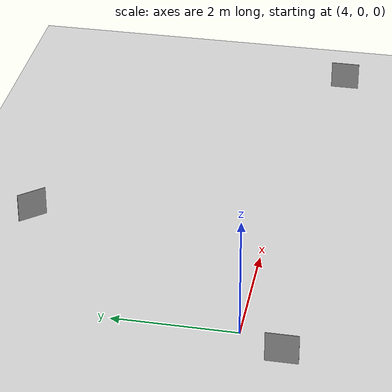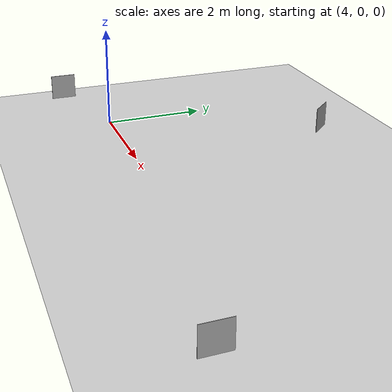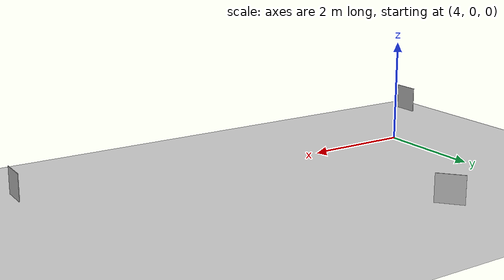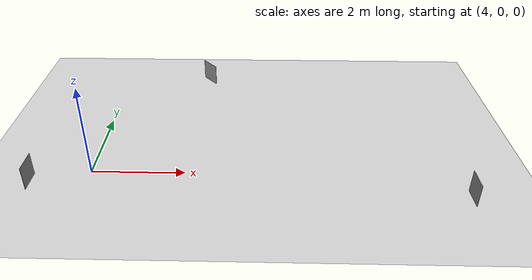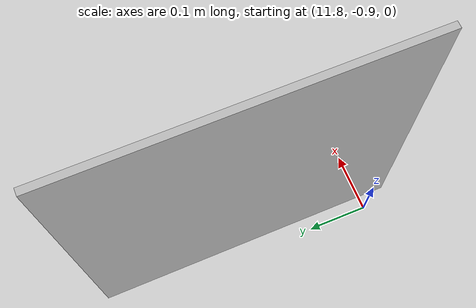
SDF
<sdf version="1.7">
 <world name="default">
  <light name="sun" type="directional">
   <pose>0 0 10 0 -0 0</pose>
   <diffuse>0.8 0.8 0.8 1</diffuse>
   <specular>0.2 0.2 0.2 1</specular>
   <attenuation>
    <range>1000</range>
    <constant>0.9</constant>
    <linear>0.01</linear>
    <quadratic>0.001</quadratic>
   </attenuation>
   <direction>-0.5 0.1 -0.9</direction>
   <spot><inner_angle>0</inner_angle><outer_angle>0</outer_angle><falloff>0</falloff></spot>
  </light>
  <model name="ground_plane">
   <static>1</static>
   <link name="link">
    <collision name="collision">
     <geometry><plane><normal>0 0 1</normal><size>100 100</size></plane></geometry>
     <surface>
      <contact><collide_bitmask>65535</collide_bitmask></contact>
      <friction><ode><mu>100</mu><mu2>50</mu2></ode></friction>
     </surface>
    </collision>
    <visual name="visual">
     <cast_shadows>0</cast_shadows>
     <geometry><plane><normal>0 0 1</normal><size>100 100</size></plane></geometry>
     <material>
      <script><uri>file://media/materials/scripts/gazebo.material</uri><name>Gazebo/Grey</name></script>
     </material>
    </visual>
   </link>
  </model>
  <gravity>0 0 -9.8</gravity>
  <magnetic_field>6e-06 2.3e-05 -4.2e-05</magnetic_field>
  <atmosphere type="adiabatic"/>
  <physics type="ode">
   <max_step_size>0.001</max_step_size>
   <real_time_factor>1</real_time_factor>
   <real_time_update_rate>1000</real_time_update_rate>
  </physics>
  <scene><ambient>0.4 0.4 0.4 1</ambient><background>0.7 0.7 0.7 1</background><shadows>1</shadows></scene>
  <spherical_coordinates>
   <surface_model>EARTH_WGS84</surface_model>
   <latitude_deg>0</latitude_deg>
   <longitude_deg>0</longitude_deg>
   <elevation>0</elevation>
   <heading_deg>0</heading_deg>
  </spherical_coordinates>
  <model name="Marker1">
   <static>1</static>
   <link name="link">
    <visual name="visual">
     <geometry><mesh><uri>model://marker1/meshes/Marker1.dae</uri><scale>1 1 1</scale></mesh></geometry>
    </visual>
   </link>
   <pose>3.03261 -0.765225 0.328058 0 -0 0</pose>
  </model>
  <model name="Marker2">
   <static>1</static>
   <link name="link">
    <visual name="visual">
     <geometry><mesh><uri>model://marker2/meshes/Marker2.dae</uri><scale>1 1 1</scale></mesh></geometry>
    </visual>
   </link>
   <pose>6.21704 3.82086 0.173535 0 -0 0.709885</pose>
  </model>
  <model name="Marker3">
   <static>1</static>
   <link name="link">
    <visual name="visual">
     <geometry><mesh><uri>model://marker3/meshes/Marker3.dae</uri><scale>1 1 1</scale></mesh></geometry>
    </visual>
   </link>
   <pose>11.827 -0.694284 0 0 -0 0</pose>
  </model>
 </world>
</sdf>
